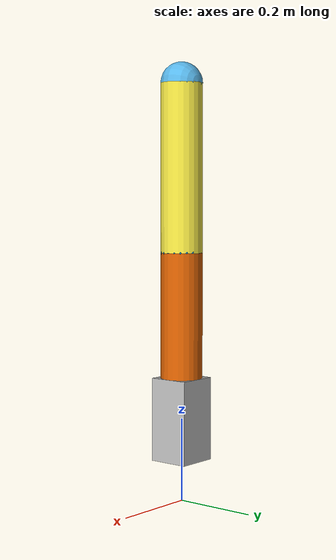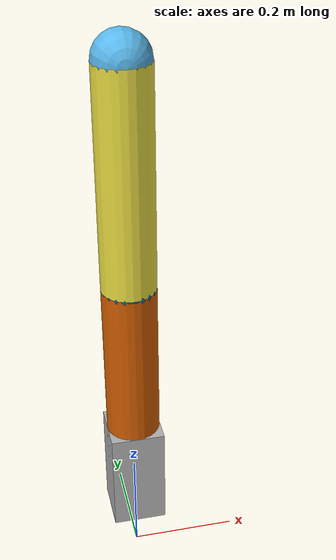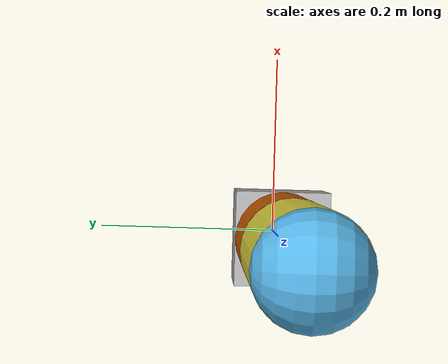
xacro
<?xml version="1.0"?>
<robot name="7DOF_ROBOT">
    <!-- World -->
    <link name="world"/>

    <joint name="q1" type="revolute">
        <origin xyz="0.0 0.0 1.0" rpy="1.57 0.0 0.0"/>
        <parent link="world"/>
        <child link="shoulder1"/>
        <axis xyz="0 0 1"/>
        <limit lower="-0.87" upper="3.14" effort="1000" velocity="0.0"/>
    </joint>

    <!-- Shoulde1 -->
    <link name="shoulder1">
        <visual>
            <geometry>
                <sphere radius="0.05"/>
            </geometry>
        </visual>
    </link>

    <joint name="q2" type="revolute">
        <origin xyz="0.0 0.0 0.0" rpy="1.57 -1.57  0.0"/>
        <parent link="shoulder1"/>
        <child link="shoulder2"/>
        <axis xyz="0 0 1"/>
        <limit lower="0.0" upper="1.57" effort="1000" velocity="0.0"/>
    </joint>

    <!-- Shoulde2 -->
    <link name="shoulder2"/>

    <joint name="q3" type="revolute">
        <origin xyz="0.0 0.0 0.0" rpy="-1.57 -1.57 0.0"/>
        <parent link="shoulder2"/>
        <child link="shoulder3"/>
        <axis xyz="0 0 1"/>
        <limit lower="0.0" upper="3.14" effort="1000" velocity="0.0"/>
    </joint>

    <!-- Shoulde3 -->
    <link name="shoulder3">
        <visual>
            <geometry>
                <cylinder length="0.4" radius="0.05"/>
            </geometry>
            <origin xyz="0.2 0.0 0.0" rpy="0.0 1.57 0.0"/>
        </visual>
    </link>

    <joint name="q4" type="revolute">
        <origin xyz="0.4 0.0 0.0" rpy="-1.57 -1.57 0.0"/>
        <parent link="shoulder3"/>
        <child link="elbow"/>
        <axis xyz="0 0 1"/>
        <limit lower="0" upper="2.61" effort="1000" velocity="0.0"/>
    </joint>

    <!-- Elbow -->
    <link name="elbow">
        <visual>
            <geometry>
                <sphere radius="0.05"/>
            </geometry>
        </visual>
    </link>

    <joint name="q5" type="revolute">
        <origin xyz="0.0 0.4 0.0" rpy="-1.57 0.0 0.0"/>
        <parent link="elbow"/>
        <child link="wrist1"/>
        <axis xyz="0 0 1"/>
        <limit lower="-1.57" upper="1.57" effort="1000" velocity="0.0"/>
    </joint>

    <!-- Wrist1 -->
    <link name="wrist1">
        <visual>
            <geometry>
                <cylinder length="0.4" radius="0.05"/>
            </geometry>
            <origin xyz="0.0 0.0 -0.2" rpy="0.0 0.0 0.0"/>
        </visual>
    </link>

    <joint name="q6" type="revolute">
        <origin xyz="0.0 0.0 0.0" rpy="1.57 -1.57 0.0"/>
        <parent link="wrist1"/>
        <child link="wrist2"/>
        <axis xyz="0 0 1"/>
        <limit lower="-1.57" upper="1.04" effort="1000" velocity="0.0"/>
    </joint>

    <!-- Wrist2 -->
    <link name="wrist2"/>

    <joint name="q7" type="revolute">
        <origin xyz="0.0 0.0 0.0" rpy="1.57 0.0 0.0"/>
        <parent link="wrist2"/>
        <child link="wrist3"/>
        <axis xyz="0 0 1"/>
        <limit lower="-0.34" upper="0.69" effort="1000" velocity="0.0"/>
    </joint>

    <!-- Wrist3 -->
    <link name="wrist3">
            <visual>
            <geometry>
                <box size="0.2 0.1 0.1"/>
            </geometry>
        </visual>
    </link>

</robot>
